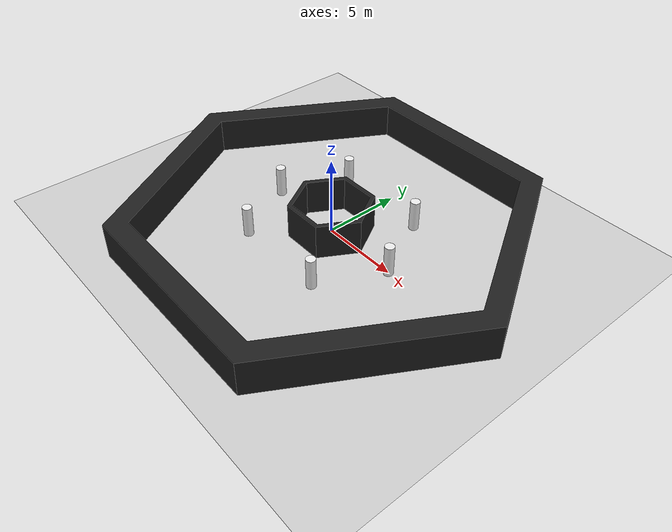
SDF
<sdf version='1.4'>
  <world name='default'>
    <!-- A global light source -->
    <include>
      <uri>model://sun</uri>
    </include>

    <!-- A ground plane -->
    <include>
      <uri>model://ground_plane</uri>
    </include>

    <physics type="ode">
      <real_time_update_rate>1000.0</real_time_update_rate>
      <max_step_size>0.001</max_step_size>
      <real_time_factor>1</real_time_factor>
      <ode>
        <solver>
          <type>quick</type>
          <iters>150</iters>
          <precon_iters>0</precon_iters>
          <sor>1.400000</sor>
          <use_dynamic_moi_rescaling>1</use_dynamic_moi_rescaling>
        </solver>
        <constraints>
          <cfm>0.00001</cfm>
          <erp>0.2</erp>
          <contact_max_correcting_vel>2000.000000</contact_max_correcting_vel>
          <contact_surface_layer>0.01000</contact_surface_layer>
        </constraints>
      </ode>
    </physics>

    <!-- Load world -->
    <include>
      <uri>model://x100_world</uri>
    </include>

    <scene>
      <ambient>0.4 0.4 0.4 1</ambient>
      <background>0.7 0.7 0.7 1</background>
      <shadows>true</shadows>
    </scene>

    <gui fullscreen='0'>
      <camera name='user_camera'>
        <pose>0.8 0.0 12.0 0 1.5708 0</pose>
        <view_controller>orbit</view_controller>
      </camera>
    </gui>
  </world>
</sdf>

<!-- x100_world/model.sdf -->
<sdf version='1.5'>

    <!-- Draw Circle -->
    <model name='ros_symbol'>
      <static>1</static>
      <link name='symbol'>
        <collision name='one'>
          <pose>-5 0 1 0 0 0</pose>
          <geometry>
            <cylinder>
              <radius>0.3</radius>
              <length>2</length>
            </cylinder>
          </geometry>
          <max_contacts>10</max_contacts>
          <surface>
            <bounce/>
            <friction>
              <ode/>
            </friction>
            <contact>
              <ode/>
            </contact>
          </surface>
        </collision>

        <visual name='one'>
          <pose>-5 0 1 0 0 0</pose>
          <geometry>
            <cylinder>
              <radius>0.3</radius>
              <length>2</length>
            </cylinder>
          </geometry>
          <material>
            <script>
              <uri>file://media/materials/scripts/gazebo.material</uri>
              <name>Gazebo/White</name>
            </script>
          </material>
        </visual>

        <collision name='two'>
          <pose>-3 -4 1 0 0 0</pose>
          <geometry>
            <cylinder>
              <radius>0.3</radius>
              <length>2</length>
            </cylinder>
          </geometry>
          <max_contacts>10</max_contacts>
          <surface>
            <bounce/>
            <friction>
              <ode/>
            </friction>
            <contact>
              <ode/>
            </contact>
          </surface>
        </collision>

        <visual name='two'>
          <pose>-3 -4 1 0 0 0</pose>
          <geometry>
            <cylinder>
              <radius>0.3</radius>
              <length>2</length>
            </cylinder>
          </geometry>
          <material>
            <script>
              <uri>file://media/materials/scripts/gazebo.material</uri>
              <name>Gazebo/White</name>
            </script>
          </material>
        </visual>

        <collision name='three'>
          <pose>3 -4 1 0 0 0</pose>
          <geometry>
            <cylinder>
              <radius>0.3</radius>
              <length>2</length>
            </cylinder>
          </geometry>
          <max_contacts>10</max_contacts>
          <surface>
            <bounce/>
            <friction>
              <ode/>
            </friction>
            <contact>
              <ode/>
            </contact>
          </surface>
        </collision>

        <visual name='three'>
          <pose>3 -4 1 0 0 0</pose>
          <geometry>
            <cylinder>
              <radius>0.3</radius>
              <length>2</length>
            </cylinder>
          </geometry>
          <material>
            <script>
              <uri>file://media/materials/scripts/gazebo.material</uri>
              <name>Gazebo/White</name>
            </script>
          </material>
        </visual>

        <collision name='four'>
          <pose>5 0 1 0 0 0</pose>
          <geometry>
            <cylinder>
              <radius>0.3</radius>
              <length>2</length>
            </cylinder>
          </geometry>
          <max_contacts>10</max_contacts>
          <surface>
            <bounce/>
            <friction>
              <ode/>
            </friction>
            <contact>
              <ode/>
            </contact>
          </surface>
        </collision>

        <visual name='four'>
          <pose>5 0 1 0 0 0</pose>
          <geometry>
            <cylinder>
              <radius>0.3</radius>
              <length>2</length>
            </cylinder>
          </geometry>
          <material>
            <script>
              <uri>file://media/materials/scripts/gazebo.material</uri>
              <name>Gazebo/White</name>
            </script>
          </material>
        </visual>

        <collision name='five'>
          <pose>3 4 1 0 0 0</pose>
          <geometry>
            <cylinder>
              <radius>0.3</radius>
              <length>2</length>
            </cylinder>
          </geometry>
          <max_contacts>10</max_contacts>
          <surface>
            <bounce/>
            <friction>
              <ode/>
            </friction>
            <contact>
              <ode/>
            </contact>
          </surface>
        </collision>

        <visual name='five'>
          <pose>3 4 1 0 0 0</pose>
          <geometry>
            <cylinder>
              <radius>0.3</radius>
              <length>2</length>
            </cylinder>
          </geometry>
          <material>
            <script>
              <uri>file://media/materials/scripts/gazebo.material</uri>
              <name>Gazebo/White</name>
            </script>
          </material>
        </visual>

        <collision name='six'>
          <pose>-3 4 1 0 0 0</pose>
          <geometry>
            <cylinder>
              <radius>0.3</radius>
              <length>2</length>
            </cylinder>
          </geometry>
          <max_contacts>10</max_contacts>
          <surface>
            <bounce/>
            <friction>
              <ode/>
            </friction>
            <contact>
              <ode/>
            </contact>
          </surface>
        </collision>

        <visual name='six'>
          <pose>-3 4 1 0 0 0</pose>
          <geometry>
            <cylinder>
              <radius>0.3</radius>
              <length>2</length>
            </cylinder>
          </geometry>
          <material>
            <script>
              <uri>file://media/materials/scripts/gazebo.material</uri>
              <name>Gazebo/White</name>
            </script>
          </material>
        </visual>

        <!-- Draw Wall -->
        <collision name='body'>
        <pose>0 0 -0.3 0 0 -1.5708</pose>
        <geometry>
          <mesh>
            <uri>model://turtlebot3_world/meshes/wall.dae</uri>
            <scale>1 1 0.5</scale>
          </mesh>
        </geometry>
        <max_contacts>10</max_contacts>
        <surface>
          <bounce/>
          <friction>
            <ode/>
          </friction>
          <contact>
            <ode/>
          </contact>
        </surface>
      </collision>

      <visual name='body'>
        <pose>0 0 -0.3 0 0 -1.5708</pose>
        <geometry>
          <mesh>
            <uri>model://turtlebot3_world/meshes/wall.dae</uri>
            <scale>1 1 0.5</scale>
          </mesh>
        </geometry>
        <material>
          <script>
            <uri>file://media/materials/scripts/gazebo.material</uri>
            <name>Gazebo/FlatBlack</name>
          </script>
        </material>
      </visual>

      <!-- Draw Wall -->
        <collision name='body1'>
        <pose>0 0 -0.3 0 0 -1.5708</pose>
        <geometry>
          <mesh>
            <uri>model://turtlebot3_world/meshes/wall.dae</uri>
            <scale>0.2 0.2 0.5</scale>
          </mesh>
        </geometry>
        <max_contacts>10</max_contacts>
        <surface>
          <bounce/>
          <friction>
            <ode/>
          </friction>
          <contact>
            <ode/>
          </contact>
        </surface>
      </collision>

      <visual name='body1'>
        <pose>0 0 -0.3 0 0 -1.5708</pose>
        <geometry>
          <mesh>
            <uri>model://turtlebot3_world/meshes/wall.dae</uri>
            <scale>0.2 0.2 0.5</scale>
          </mesh>
        </geometry>
        <material>
          <script>
            <uri>file://media/materials/scripts/gazebo.material</uri>
            <name>Gazebo/FlatBlack</name>
          </script>
        </material>
      </visual>
    </link>
  </model>
</sdf>
